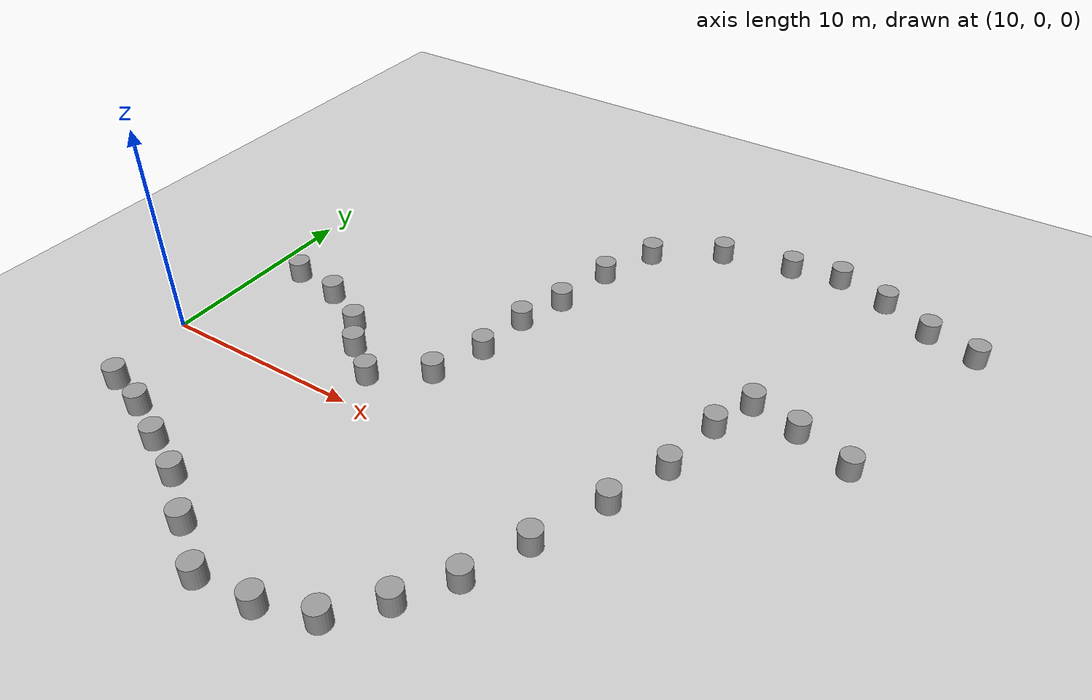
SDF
<sdf version="1.4">
 <world name="default">
  <light name="sun" type="directional">
   <pose>0 0 10 0 -0 0</pose>
   <diffuse>0.8 0.8 0.8 1</diffuse>
   <specular>0.2 0.2 0.2 1</specular>
   <attenuation>
    <range>1000</range>
    <constant>0.9</constant>
    <linear>0.01</linear>
    <quadratic>0.001</quadratic>
   </attenuation>
   <direction>-0.5 0.1 -0.9</direction>
  </light>
  <scene>
   <sky><time>10</time><clouds><speed>5</speed><direction>1.14</direction><humidity>0.3</humidity></clouds></sky>
   <ambient>0.4 0.4 0.4 1</ambient>
   <background>0.7 0.7 0.7 1</background>
   <shadows>1</shadows>
  </scene>
  <model name="ground_plane">
   <static>1</static>
   <link name="link">
    <collision name="collision">
     <geometry><plane><normal>0 0 1</normal><size>500 500</size></plane></geometry>
     <surface><friction><ode><mu>100</mu><mu2>100</mu2></ode></friction></surface>
    </collision>
    <visual name="visual">
     <cast_shadows>0</cast_shadows>
     <geometry><plane><normal>0 0 1</normal><size>500 500</size></plane></geometry>
     <material>
      <script><uri>file://media/materials/scripts/gazebo.material</uri><name>Gazebo/Grey</name></script>
     </material>
    </visual>
    <velocity_decay><linear>0</linear><angular>0</angular></velocity_decay>
   </link>
  </model>
  <physics type="ode">
   <max_step_size>0.001</max_step_size>
   <real_time_factor>1</real_time_factor>
   <real_time_update_rate>1000</real_time_update_rate>
   <gravity>0 0 -9.8</gravity>
  </physics>
  <spherical_coordinates>
   <surface_model>EARTH_WGS84</surface_model>
   <latitude_deg>0</latitude_deg>
   <longitude_deg>0</longitude_deg>
   <elevation>0</elevation>
   <heading_deg>0</heading_deg>
  </spherical_coordinates>
  <model name="unit_cylinder_1">
   <pose>10.8493 -4.37598 0.499995 0 -0 0</pose>
   <link name="link">
    <inertial>
     <mass>1</mass>
     <inertia><ixx>1</ixx><ixy>0</ixy><ixz>0</ixz><iyy>1</iyy><iyz>0</iyz><izz>1</izz></inertia>
    </inertial>
    <collision name="collision">
     <geometry><cylinder><radius>0.5</radius><length>1</length></cylinder></geometry>
    </collision>
    <visual name="visual">
     <geometry><cylinder><radius>0.5</radius><length>1</length></cylinder></geometry>
     <material>
      <script><uri>file://media/materials/scripts/gazebo.material</uri><name>Gazebo/Grey</name></script>
     </material>
    </visual>
    <velocity_decay><linear>0</linear><angular>0</angular></velocity_decay>
   </link>
   <static>0</static>
  </model>
  <model name="unit_cylinder_2">
   <pose>15.2567 -6.04626 0.5 0 -0 0</pose>
   <link name="link">
    <inertial>
     <mass>1</mass>
     <inertia><ixx>1</ixx><ixy>0</ixy><ixz>0</ixz><iyy>1</iyy><iyz>0</iyz><izz>1</izz></inertia>
    </inertial>
    <collision name="collision">
     <geometry><cylinder><radius>0.5</radius><length>1</length></cylinder></geometry>
    </collision>
    <visual name="visual">
     <geometry><cylinder><radius>0.5</radius><length>1</length></cylinder></geometry>
     <material>
      <script><uri>file://media/materials/scripts/gazebo.material</uri><name>Gazebo/Grey</name></script>
     </material>
    </visual>
    <velocity_decay><linear>0</linear><angular>0</angular></velocity_decay>
   </link>
   <static>0</static>
  </model>
  <model name="unit_cylinder_3">
   <pose>19.6831 -8.52328 0.499992 0 -0 0</pose>
   <link name="link">
    <inertial>
     <mass>1</mass>
     <inertia><ixx>1</ixx><ixy>0</ixy><ixz>0</ixz><iyy>1</iyy><iyz>0</iyz><izz>1</izz></inertia>
    </inertial>
    <collision name="collision">
     <geometry><cylinder><radius>0.5</radius><length>1</length></cylinder></geometry>
    </collision>
    <visual name="visual">
     <geometry><cylinder><radius>0.5</radius><length>1</length></cylinder></geometry>
     <material>
      <script><uri>file://media/materials/scripts/gazebo.material</uri><name>Gazebo/Grey</name></script>
     </material>
    </visual>
    <velocity_decay><linear>0</linear><angular>0</angular></velocity_decay>
   </link>
   <static>0</static>
  </model>
  <model name="unit_cylinder_4">
   <pose>24.6584 -9.76774 0.499994 -1e-06 1e-06 0</pose>
   <link name="link">
    <inertial>
     <mass>1</mass>
     <inertia><ixx>1</ixx><ixy>0</ixy><ixz>0</ixz><iyy>1</iyy><iyz>0</iyz><izz>1</izz></inertia>
    </inertial>
    <collision name="collision">
     <geometry><cylinder><radius>0.5</radius><length>1</length></cylinder></geometry>
    </collision>
    <visual name="visual">
     <geometry><cylinder><radius>0.5</radius><length>1</length></cylinder></geometry>
     <material>
      <script><uri>file://media/materials/scripts/gazebo.material</uri><name>Gazebo/Grey</name></script>
     </material>
    </visual>
    <velocity_decay><linear>0</linear><angular>0</angular></velocity_decay>
   </link>
   <static>0</static>
  </model>
  <model name="unit_cylinder_5">
   <pose>33.5383 3.88023 0.499992 0 -0 0</pose>
   <link name="link">
    <inertial>
     <mass>1</mass>
     <inertia><ixx>1</ixx><ixy>0</ixy><ixz>0</ixz><iyy>1</iyy><iyz>0</iyz><izz>1</izz></inertia>
    </inertial>
    <collision name="collision">
     <geometry><cylinder><radius>0.5</radius><length>1</length></cylinder></geometry>
    </collision>
    <visual name="visual">
     <geometry><cylinder><radius>0.5</radius><length>1</length></cylinder></geometry>
     <material>
      <script><uri>file://media/materials/scripts/gazebo.material</uri><name>Gazebo/Grey</name></script>
     </material>
    </visual>
    <velocity_decay><linear>0</linear><angular>0</angular></velocity_decay>
   </link>
   <static>0</static>
  </model>
  <model name="unit_cylinder_6">
   <pose>28.6084 -7.0963 0.499998 -0 -0 -0</pose>
   <link name="link">
    <inertial>
     <mass>1</mass>
     <inertia><ixx>1</ixx><ixy>0</ixy><ixz>0</ixz><iyy>1</iyy><iyz>0</iyz><izz>1</izz></inertia>
    </inertial>
    <collision name="collision">
     <geometry><cylinder><radius>0.5</radius><length>1</length></cylinder></geometry>
    </collision>
    <visual name="visual">
     <geometry><cylinder><radius>0.5</radius><length>1</length></cylinder></geometry>
     <material>
      <script><uri>file://media/materials/scripts/gazebo.material</uri><name>Gazebo/Grey</name></script>
     </material>
    </visual>
    <velocity_decay><linear>0</linear><angular>0</angular></velocity_decay>
   </link>
   <static>0</static>
  </model>
  <model name="unit_cylinder_7">
   <pose>31.1374 -2.27861 0.499991 0 -0 0</pose>
   <link name="link">
    <inertial>
     <mass>1</mass>
     <inertia><ixx>1</ixx><ixy>0</ixy><ixz>0</ixz><iyy>1</iyy><iyz>0</iyz><izz>1</izz></inertia>
    </inertial>
    <collision name="collision">
     <geometry><cylinder><radius>0.5</radius><length>1</length></cylinder></geometry>
    </collision>
    <visual name="visual">
     <geometry><cylinder><radius>0.5</radius><length>1</length></cylinder></geometry>
     <material>
      <script><uri>file://media/materials/scripts/gazebo.material</uri><name>Gazebo/Grey</name></script>
     </material>
    </visual>
    <velocity_decay><linear>0</linear><angular>0</angular></velocity_decay>
   </link>
   <static>0</static>
  </model>
  <model name="unit_cylinder_8">
   <pose>23.2547 8.71317 0.499998 1e-06 -1e-06 0</pose>
   <link name="link">
    <inertial>
     <mass>1</mass>
     <inertia><ixx>1</ixx><ixy>0</ixy><ixz>0</ixz><iyy>1</iyy><iyz>0</iyz><izz>1</izz></inertia>
    </inertial>
    <collision name="collision">
     <geometry><cylinder><radius>0.5</radius><length>1</length></cylinder></geometry>
    </collision>
    <visual name="visual">
     <geometry><cylinder><radius>0.5</radius><length>1</length></cylinder></geometry>
     <material>
      <script><uri>file://media/materials/scripts/gazebo.material</uri><name>Gazebo/Grey</name></script>
     </material>
    </visual>
    <velocity_decay><linear>0</linear><angular>0</angular></velocity_decay>
   </link>
   <static>0</static>
  </model>
  <model name="unit_cylinder_9">
   <pose>34.7484 9.12046 0.499996 0 -1e-06 0</pose>
   <link name="link">
    <inertial>
     <mass>1</mass>
     <inertia><ixx>1</ixx><ixy>0</ixy><ixz>0</ixz><iyy>1</iyy><iyz>0</iyz><izz>1</izz></inertia>
    </inertial>
    <collision name="collision">
     <geometry><cylinder><radius>0.5</radius><length>1</length></cylinder></geometry>
    </collision>
    <visual name="visual">
     <geometry><cylinder><radius>0.5</radius><length>1</length></cylinder></geometry>
     <material>
      <script><uri>file://media/materials/scripts/gazebo.material</uri><name>Gazebo/Grey</name></script>
     </material>
    </visual>
    <velocity_decay><linear>0</linear><angular>0</angular></velocity_decay>
   </link>
   <static>0</static>
  </model>
  <model name="unit_cylinder_10">
   <pose>39.5499 7.67523 0.499992 -1e-06 1e-06 0</pose>
   <link name="link">
    <inertial>
     <mass>1</mass>
     <inertia><ixx>1</ixx><ixy>0</ixy><ixz>0</ixz><iyy>1</iyy><iyz>0</iyz><izz>1</izz></inertia>
    </inertial>
    <collision name="collision">
     <geometry><cylinder><radius>0.5</radius><length>1</length></cylinder></geometry>
    </collision>
    <visual name="visual">
     <geometry><cylinder><radius>0.5</radius><length>1</length></cylinder></geometry>
     <material>
      <script><uri>file://media/materials/scripts/gazebo.material</uri><name>Gazebo/Grey</name></script>
     </material>
    </visual>
    <velocity_decay><linear>0</linear><angular>0</angular></velocity_decay>
   </link>
   <static>0</static>
  </model>
  <model name="unit_cylinder_11">
   <pose>11.8526 5.97174 0.499992 0 -0 1.06583</pose>
   <link name="link">
    <inertial>
     <mass>1</mass>
     <inertia><ixx>1</ixx><ixy>0</ixy><ixz>0</ixz><iyy>1</iyy><iyz>0</iyz><izz>1</izz></inertia>
    </inertial>
    <collision name="collision">
     <geometry><cylinder><radius>0.5</radius><length>1</length></cylinder></geometry>
    </collision>
    <visual name="visual">
     <geometry><cylinder><radius>0.5</radius><length>1</length></cylinder></geometry>
     <material>
      <script><uri>file://media/materials/scripts/gazebo.material</uri><name>Gazebo/Grey</name></script>
     </material>
    </visual>
    <velocity_decay><linear>0</linear><angular>0</angular></velocity_decay>
   </link>
   <static>0</static>
  </model>
  <model name="unit_cylinder_12">
   <pose>16.8839 4.2561 0.499995 0 -0 0</pose>
   <link name="link">
    <inertial>
     <mass>1</mass>
     <inertia><ixx>1</ixx><ixy>0</ixy><ixz>0</ixz><iyy>1</iyy><iyz>0</iyz><izz>1</izz></inertia>
    </inertial>
    <collision name="collision">
     <geometry><cylinder><radius>0.5</radius><length>1</length></cylinder></geometry>
    </collision>
    <visual name="visual">
     <geometry><cylinder><radius>0.5</radius><length>1</length></cylinder></geometry>
     <material>
      <script><uri>file://media/materials/scripts/gazebo.material</uri><name>Gazebo/Grey</name></script>
     </material>
    </visual>
    <velocity_decay><linear>0</linear><angular>0</angular></velocity_decay>
   </link>
   <static>0</static>
  </model>
  <model name="unit_cylinder_13">
   <pose>19.7868 1.75151 0.499994 -1e-06 1e-06 0</pose>
   <link name="link">
    <inertial>
     <mass>1</mass>
     <inertia><ixx>1</ixx><ixy>0</ixy><ixz>0</ixz><iyy>1</iyy><iyz>0</iyz><izz>1</izz></inertia>
    </inertial>
    <collision name="collision">
     <geometry><cylinder><radius>0.5</radius><length>1</length></cylinder></geometry>
    </collision>
    <visual name="visual">
     <geometry><cylinder><radius>0.5</radius><length>1</length></cylinder></geometry>
     <material>
      <script><uri>file://media/materials/scripts/gazebo.material</uri><name>Gazebo/Grey</name></script>
     </material>
    </visual>
    <velocity_decay><linear>0</linear><angular>0</angular></velocity_decay>
   </link>
   <static>0</static>
  </model>
  <model name="unit_cylinder_14">
   <pose>22.1421 3.45364 0.499994 -1e-06 1e-06 0</pose>
   <link name="link">
    <inertial>
     <mass>1</mass>
     <inertia><ixx>1</ixx><ixy>0</ixy><ixz>0</ixz><iyy>1</iyy><iyz>0</iyz><izz>1</izz></inertia>
    </inertial>
    <collision name="collision">
     <geometry><cylinder><radius>0.5</radius><length>1</length></cylinder></geometry>
    </collision>
    <visual name="visual">
     <geometry><cylinder><radius>0.5</radius><length>1</length></cylinder></geometry>
     <material>
      <script><uri>file://media/materials/scripts/gazebo.material</uri><name>Gazebo/Grey</name></script>
     </material>
    </visual>
    <velocity_decay><linear>0</linear><angular>0</angular></velocity_decay>
   </link>
   <static>0</static>
  </model>
  <model name="unit_cylinder_15">
   <pose>24.5854 14.0951 0.499992 2.64698e-23 1e-06 0.48803</pose>
   <link name="link">
    <inertial>
     <mass>1</mass>
     <inertia><ixx>1</ixx><ixy>0</ixy><ixz>0</ixz><iyy>1</iyy><iyz>0</iyz><izz>1</izz></inertia>
    </inertial>
    <collision name="collision">
     <geometry><cylinder><radius>0.5</radius><length>1</length></cylinder></geometry>
    </collision>
    <visual name="visual">
     <geometry><cylinder><radius>0.5</radius><length>1</length></cylinder></geometry>
     <material>
      <script><uri>file://media/materials/scripts/gazebo.material</uri><name>Gazebo/Grey</name></script>
     </material>
    </visual>
    <velocity_decay><linear>0</linear><angular>0</angular></velocity_decay>
   </link>
   <static>0</static>
  </model>
  <model name="unit_cylinder_16">
   <pose>25.6983 16.8599 0.5 0 -0 0</pose>
   <link name="link">
    <inertial>
     <mass>1</mass>
     <inertia><ixx>1</ixx><ixy>0</ixy><ixz>0</ixz><iyy>1</iyy><iyz>0</iyz><izz>1</izz></inertia>
    </inertial>
    <collision name="collision">
     <geometry><cylinder><radius>0.5</radius><length>1</length></cylinder></geometry>
    </collision>
    <visual name="visual">
     <geometry><cylinder><radius>0.5</radius><length>1</length></cylinder></geometry>
     <material>
      <script><uri>file://media/materials/scripts/gazebo.material</uri><name>Gazebo/Grey</name></script>
     </material>
    </visual>
    <velocity_decay><linear>0</linear><angular>0</angular></velocity_decay>
   </link>
   <static>0</static>
  </model>
  <model name="unit_cylinder_17">
   <pose>28.714 18.8867 0.499996 -0 -0 -0</pose>
   <link name="link">
    <inertial>
     <mass>1</mass>
     <inertia><ixx>1</ixx><ixy>0</ixy><ixz>0</ixz><iyy>1</iyy><iyz>0</iyz><izz>1</izz></inertia>
    </inertial>
    <collision name="collision">
     <geometry><cylinder><radius>0.5</radius><length>1</length></cylinder></geometry>
    </collision>
    <visual name="visual">
     <geometry><cylinder><radius>0.5</radius><length>1</length></cylinder></geometry>
     <material>
      <script><uri>file://media/materials/scripts/gazebo.material</uri><name>Gazebo/Grey</name></script>
     </material>
    </visual>
    <velocity_decay><linear>0</linear><angular>0</angular></velocity_decay>
   </link>
   <static>0</static>
  </model>
  <model name="unit_cylinder_18">
   <pose>32.1404 19.5656 0.499992 0 1e-06 0</pose>
   <link name="link">
    <inertial>
     <mass>1</mass>
     <inertia><ixx>1</ixx><ixy>0</ixy><ixz>0</ixz><iyy>1</iyy><iyz>0</iyz><izz>1</izz></inertia>
    </inertial>
    <collision name="collision">
     <geometry><cylinder><radius>0.5</radius><length>1</length></cylinder></geometry>
    </collision>
    <visual name="visual">
     <geometry><cylinder><radius>0.5</radius><length>1</length></cylinder></geometry>
     <material>
      <script><uri>file://media/materials/scripts/gazebo.material</uri><name>Gazebo/Grey</name></script>
     </material>
    </visual>
    <velocity_decay><linear>0</linear><angular>0</angular></velocity_decay>
   </link>
   <static>0</static>
  </model>
  <model name="unit_cylinder_19">
   <pose>37.0583 19.2189 0.499994 0 -0 0</pose>
   <link name="link">
    <inertial>
     <mass>1</mass>
     <inertia><ixx>1</ixx><ixy>0</ixy><ixz>0</ixz><iyy>1</iyy><iyz>0</iyz><izz>1</izz></inertia>
    </inertial>
    <collision name="collision">
     <geometry><cylinder><radius>0.5</radius><length>1</length></cylinder></geometry>
    </collision>
    <visual name="visual">
     <geometry><cylinder><radius>0.5</radius><length>1</length></cylinder></geometry>
     <material>
      <script><uri>file://media/materials/scripts/gazebo.material</uri><name>Gazebo/Grey</name></script>
     </material>
    </visual>
    <velocity_decay><linear>0</linear><angular>0</angular></velocity_decay>
   </link>
   <static>0</static>
  </model>
  <model name="unit_cylinder_20">
   <pose>41.8198 17.3778 0.499999 0 -0 0.057486</pose>
   <link name="link">
    <inertial>
     <mass>1</mass>
     <inertia><ixx>1</ixx><ixy>0</ixy><ixz>0</ixz><iyy>1</iyy><iyz>0</iyz><izz>1</izz></inertia>
    </inertial>
    <collision name="collision">
     <geometry><cylinder><radius>0.5</radius><length>1</length></cylinder></geometry>
    </collision>
    <visual name="visual">
     <geometry><cylinder><radius>0.5</radius><length>1</length></cylinder></geometry>
     <material>
      <script><uri>file://media/materials/scripts/gazebo.material</uri><name>Gazebo/Grey</name></script>
     </material>
    </visual>
    <velocity_decay><linear>0</linear><angular>0</angular></velocity_decay>
   </link>
   <static>0</static>
  </model>
  <model name="unit_cylinder_1_0">
   <pose>32.4863 1 0.499992 -1e-06 -0 0</pose>
   <link name="link">
    <inertial>
     <mass>1</mass>
     <inertia><ixx>1</ixx><ixy>0</ixy><ixz>0</ixz><iyy>1</iyy><iyz>0</iyz><izz>1</izz></inertia>
    </inertial>
    <collision name="collision">
     <geometry><cylinder><radius>0.5</radius><length>1</length></cylinder></geometry>
    </collision>
    <visual name="visual">
     <geometry><cylinder><radius>0.5</radius><length>1</length></cylinder></geometry>
     <material>
      <script><uri>file://media/materials/scripts/gazebo.material</uri><name>Gazebo/Grey</name></script>
     </material>
    </visual>
    <velocity_decay><linear>0</linear><angular>0</angular></velocity_decay>
   </link>
   <static>0</static>
  </model>
  <model name="unit_cylinder_2_0">
   <pose>34 7 0.499998 1e-06 -0 0</pose>
   <link name="link">
    <inertial>
     <mass>1</mass>
     <inertia><ixx>1</ixx><ixy>0</ixy><ixz>0</ixz><iyy>1</iyy><iyz>0</iyz><izz>1</izz></inertia>
    </inertial>
    <collision name="collision">
     <geometry><cylinder><radius>0.5</radius><length>1</length></cylinder></geometry>
    </collision>
    <visual name="visual">
     <geometry><cylinder><radius>0.5</radius><length>1</length></cylinder></geometry>
     <material>
      <script><uri>file://media/materials/scripts/gazebo.material</uri><name>Gazebo/Grey</name></script>
     </material>
    </visual>
    <velocity_decay><linear>0</linear><angular>0</angular></velocity_decay>
   </link>
   <static>0</static>
  </model>
  <model name="unit_cylinder_3_0">
   <pose>30 -5 0.499998 1e-06 -0 0</pose>
   <link name="link">
    <inertial>
     <mass>1</mass>
     <inertia><ixx>1</ixx><ixy>0</ixy><ixz>0</ixz><iyy>1</iyy><iyz>0</iyz><izz>1</izz></inertia>
    </inertial>
    <collision name="collision">
     <geometry><cylinder><radius>0.5</radius><length>1</length></cylinder></geometry>
    </collision>
    <visual name="visual">
     <geometry><cylinder><radius>0.5</radius><length>1</length></cylinder></geometry>
     <material>
      <script><uri>file://media/materials/scripts/gazebo.material</uri><name>Gazebo/Grey</name></script>
     </material>
    </visual>
    <velocity_decay><linear>0</linear><angular>0</angular></velocity_decay>
   </link>
   <static>0</static>
  </model>
  <model name="unit_cylinder_4_0">
   <pose>24 11 0.499992 -1e-06 -0 0</pose>
   <link name="link">
    <inertial>
     <mass>1</mass>
     <inertia><ixx>1</ixx><ixy>0</ixy><ixz>0</ixz><iyy>1</iyy><iyz>0</iyz><izz>1</izz></inertia>
    </inertial>
    <collision name="collision">
     <geometry><cylinder><radius>0.5</radius><length>1</length></cylinder></geometry>
    </collision>
    <visual name="visual">
     <geometry><cylinder><radius>0.5</radius><length>1</length></cylinder></geometry>
     <material>
      <script><uri>file://media/materials/scripts/gazebo.material</uri><name>Gazebo/Grey</name></script>
     </material>
    </visual>
    <velocity_decay><linear>0</linear><angular>0</angular></velocity_decay>
   </link>
   <static>0</static>
  </model>
  <model name="unit_cylinder_5_0">
   <pose>23 6 0.499992 -1e-06 -0 0</pose>
   <link name="link">
    <inertial>
     <mass>1</mass>
     <inertia><ixx>1</ixx><ixy>0</ixy><ixz>0</ixz><iyy>1</iyy><iyz>0</iyz><izz>1</izz></inertia>
    </inertial>
    <collision name="collision">
     <geometry><cylinder><radius>0.5</radius><length>1</length></cylinder></geometry>
    </collision>
    <visual name="visual">
     <geometry><cylinder><radius>0.5</radius><length>1</length></cylinder></geometry>
     <material>
      <script><uri>file://media/materials/scripts/gazebo.material</uri><name>Gazebo/Grey</name></script>
     </material>
    </visual>
    <velocity_decay><linear>0</linear><angular>0</angular></velocity_decay>
   </link>
   <static>0</static>
  </model>
  <model name="unit_cylinder_6_0">
   <pose>37 8.56626 0.499992 -1e-06 -0 0</pose>
   <link name="link">
    <inertial>
     <mass>1</mass>
     <inertia><ixx>1</ixx><ixy>0</ixy><ixz>0</ixz><iyy>1</iyy><iyz>0</iyz><izz>1</izz></inertia>
    </inertial>
    <collision name="collision">
     <geometry><cylinder><radius>0.5</radius><length>1</length></cylinder></geometry>
    </collision>
    <visual name="visual">
     <geometry><cylinder><radius>0.5</radius><length>1</length></cylinder></geometry>
     <material>
      <script><uri>file://media/materials/scripts/gazebo.material</uri><name>Gazebo/Grey</name></script>
     </material>
    </visual>
    <velocity_decay><linear>0</linear><angular>0</angular></velocity_decay>
   </link>
   <static>0</static>
  </model>
  <model name="unit_cylinder_7_0">
   <pose>14.4592 5.51782 0.499998 1e-06 -0 0</pose>
   <link name="link">
    <inertial>
     <mass>1</mass>
     <inertia><ixx>1</ixx><ixy>0</ixy><ixz>0</ixz><iyy>1</iyy><iyz>0</iyz><izz>1</izz></inertia>
    </inertial>
    <collision name="collision">
     <geometry><cylinder><radius>0.5</radius><length>1</length></cylinder></geometry>
    </collision>
    <visual name="visual">
     <geometry><cylinder><radius>0.5</radius><length>1</length></cylinder></geometry>
     <material>
      <script><uri>file://media/materials/scripts/gazebo.material</uri><name>Gazebo/Grey</name></script>
     </material>
    </visual>
    <velocity_decay><linear>0</linear><angular>0</angular></velocity_decay>
   </link>
   <static>0</static>
  </model>
  <model name="unit_cylinder_8_0">
   <pose>18 3 0.499992 -1e-06 -0 0</pose>
   <link name="link">
    <inertial>
     <mass>1</mass>
     <inertia><ixx>1</ixx><ixy>0</ixy><ixz>0</ixz><iyy>1</iyy><iyz>0</iyz><izz>1</izz></inertia>
    </inertial>
    <collision name="collision">
     <geometry><cylinder><radius>0.5</radius><length>1</length></cylinder></geometry>
    </collision>
    <visual name="visual">
     <geometry><cylinder><radius>0.5</radius><length>1</length></cylinder></geometry>
     <material>
      <script><uri>file://media/materials/scripts/gazebo.material</uri><name>Gazebo/Grey</name></script>
     </material>
    </visual>
    <velocity_decay><linear>0</linear><angular>0</angular></velocity_decay>
   </link>
   <static>0</static>
  </model>
  <model name="unit_cylinder_9_0">
   <pose>17.4394 -7 0.499998 1e-06 -0 0</pose>
   <link name="link">
    <inertial>
     <mass>1</mass>
     <inertia><ixx>1</ixx><ixy>0</ixy><ixz>0</ixz><iyy>1</iyy><iyz>0</iyz><izz>1</izz></inertia>
    </inertial>
    <collision name="collision">
     <geometry><cylinder><radius>0.5</radius><length>1</length></cylinder></geometry>
    </collision>
    <visual name="visual">
     <geometry><cylinder><radius>0.5</radius><length>1</length></cylinder></geometry>
     <material>
      <script><uri>file://media/materials/scripts/gazebo.material</uri><name>Gazebo/Grey</name></script>
     </material>
    </visual>
    <velocity_decay><linear>0</linear><angular>0</angular></velocity_decay>
   </link>
   <static>0</static>
  </model>
  <model name="unit_cylinder_10_0">
   <pose>22 -10 0.499998 1e-06 -0 0</pose>
   <link name="link">
    <inertial>
     <mass>1</mass>
     <inertia><ixx>1</ixx><ixy>0</ixy><ixz>0</ixz><iyy>1</iyy><iyz>0</iyz><izz>1</izz></inertia>
    </inertial>
    <collision name="collision">
     <geometry><cylinder><radius>0.5</radius><length>1</length></cylinder></geometry>
    </collision>
    <visual name="visual">
     <geometry><cylinder><radius>0.5</radius><length>1</length></cylinder></geometry>
     <material>
      <script><uri>file://media/materials/scripts/gazebo.material</uri><name>Gazebo/Grey</name></script>
     </material>
    </visual>
    <velocity_decay><linear>0</linear><angular>0</angular></velocity_decay>
   </link>
   <static>0</static>
  </model>
  <model name="unit_cylinder_11_0">
   <pose>27 -9 0.499992 0 -0 0</pose>
   <link name="link">
    <inertial>
     <mass>1</mass>
     <inertia><ixx>1</ixx><ixy>0</ixy><ixz>0</ixz><iyy>1</iyy><iyz>0</iyz><izz>1</izz></inertia>
    </inertial>
    <collision name="collision">
     <geometry><cylinder><radius>0.5</radius><length>1</length></cylinder></geometry>
    </collision>
    <visual name="visual">
     <geometry><cylinder><radius>0.5</radius><length>1</length></cylinder></geometry>
     <material>
      <script><uri>file://media/materials/scripts/gazebo.material</uri><name>Gazebo/Grey</name></script>
     </material>
    </visual>
    <velocity_decay><linear>0</linear><angular>0</angular></velocity_decay>
   </link>
   <static>0</static>
  </model>
  <model name="unit_cylinder_12_0">
   <pose>13 -5 0.499998 0 -0 0</pose>
   <link name="link">
    <inertial>
     <mass>1</mass>
     <inertia><ixx>1</ixx><ixy>0</ixy><ixz>0</ixz><iyy>1</iyy><iyz>0</iyz><izz>1</izz></inertia>
    </inertial>
    <collision name="collision">
     <geometry><cylinder><radius>0.5</radius><length>1</length></cylinder></geometry>
    </collision>
    <visual name="visual">
     <geometry><cylinder><radius>0.5</radius><length>1</length></cylinder></geometry>
     <material>
      <script><uri>file://media/materials/scripts/gazebo.material</uri><name>Gazebo/Grey</name></script>
     </material>
    </visual>
    <velocity_decay><linear>0</linear><angular>0</angular></velocity_decay>
   </link>
   <static>0</static>
  </model>
  <model name="unit_cylinder_13_0">
   <pose>34.5307 20 0.499992 0 -0 0</pose>
   <link name="link">
    <inertial>
     <mass>1</mass>
     <inertia><ixx>1</ixx><ixy>0</ixy><ixz>0</ixz><iyy>1</iyy><iyz>0</iyz><izz>1</izz></inertia>
    </inertial>
    <collision name="collision">
     <geometry><cylinder><radius>0.5</radius><length>1</length></cylinder></geometry>
    </collision>
    <visual name="visual">
     <geometry><cylinder><radius>0.5</radius><length>1</length></cylinder></geometry>
     <material>
      <script><uri>file://media/materials/scripts/gazebo.material</uri><name>Gazebo/Grey</name></script>
     </material>
    </visual>
    <velocity_decay><linear>0</linear><angular>0</angular></velocity_decay>
   </link>
   <static>0</static>
  </model>
  <model name="unit_cylinder_14_0">
   <pose>39.457 18 0.499992 0 -0 0</pose>
   <link name="link">
    <inertial>
     <mass>1</mass>
     <inertia><ixx>1</ixx><ixy>0</ixy><ixz>0</ixz><iyy>1</iyy><iyz>0</iyz><izz>1</izz></inertia>
    </inertial>
    <collision name="collision">
     <geometry><cylinder><radius>0.5</radius><length>1</length></cylinder></geometry>
    </collision>
    <visual name="visual">
     <geometry><cylinder><radius>0.5</radius><length>1</length></cylinder></geometry>
     <material>
      <script><uri>file://media/materials/scripts/gazebo.material</uri><name>Gazebo/Grey</name></script>
     </material>
    </visual>
    <velocity_decay><linear>0</linear><angular>0</angular></velocity_decay>
   </link>
   <static>0</static>
  </model>
 </world>
</sdf>
